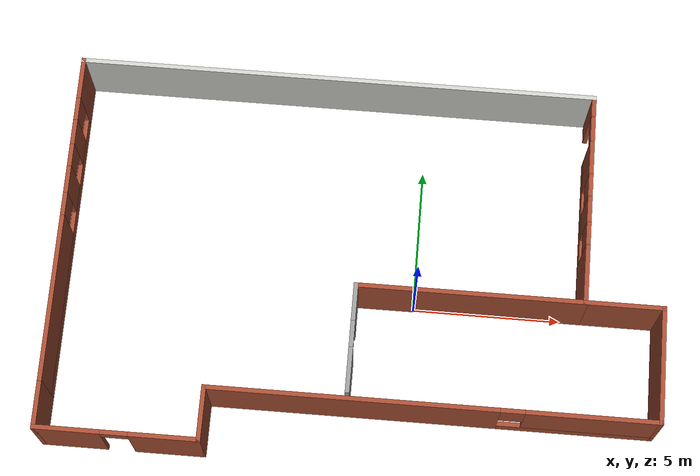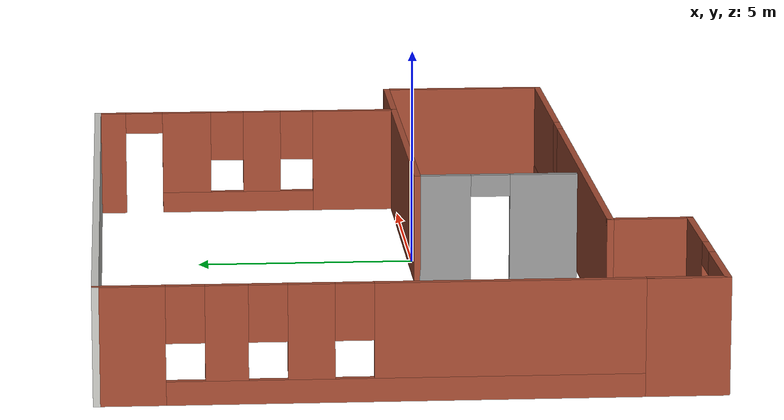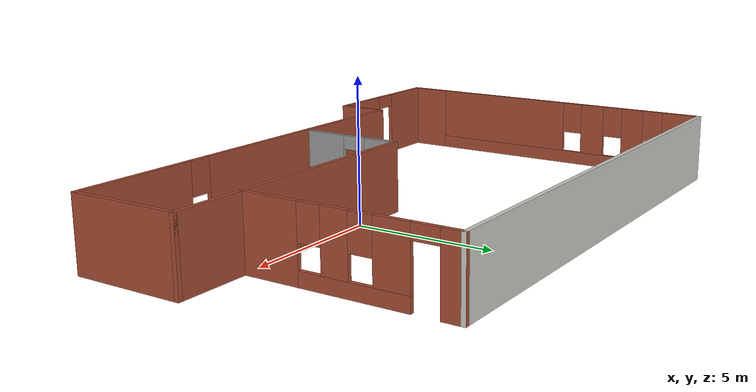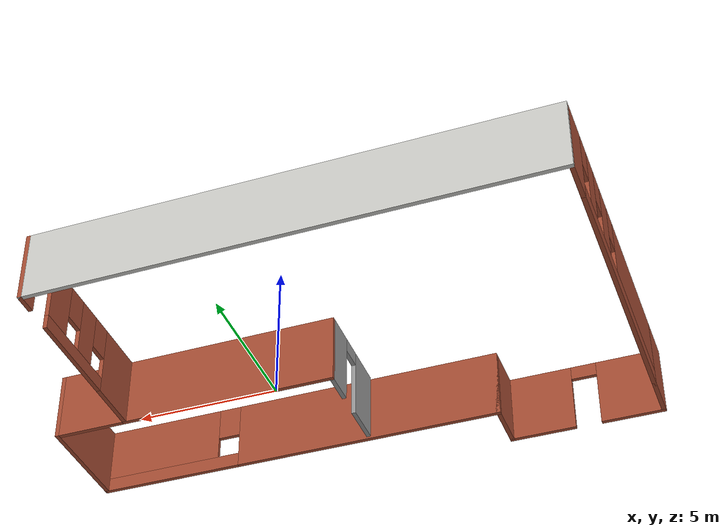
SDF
<?xml version='1.0'?>
<sdf version='1.6'>
  <model name='model'>
    <pose frame=''>-1.87936 0.889255 0 0 -0 0</pose>
    <link name='Wall_10'>
      <pose frame=''>7.50018 2.8 0 0 -0 1.57075</pose>
      <visual name='Wall_10_Visual_0'>
        <pose frame=''>-2.68442 0 1.25 0 -0 0</pose>
        <geometry>
          <box>
            <size>2.09065 0.15 2.5</size>
          </box>
        </geometry>
        <material>
          <script>
            <uri>file://media/materials/scripts/gazebo.material</uri>
            <name>Gazebo/Bricks</name>
          </script>
          <ambient>0.435294 0.796078 0.67451 1</ambient>
        </material>
        <meta>
          <layer>0</layer>
        </meta>
      </visual>
      <collision name='Wall_10_Collision_0'>
        <geometry>
          <box>
            <size>2.09065 0.15 2.5</size>
          </box>
        </geometry>
        <pose frame=''>-2.68442 0 1.25 0 -0 0</pose>
      </collision>
      <visual name='Wall_10_Visual_1'>
        <pose frame=''>3.35058 0 1.25 0 -0 0</pose>
        <geometry>
          <box>
            <size>0.758336 0.15 2.5</size>
          </box>
        </geometry>
        <material>
          <script>
            <uri>file://media/materials/scripts/gazebo.material</uri>
            <name>Gazebo/Bricks</name>
          </script>
          <ambient>0.435294 0.796078 0.67451 1</ambient>
        </material>
        <meta>
          <layer>0</layer>
        </meta>
      </visual>
      <collision name='Wall_10_Collision_1'>
        <geometry>
          <box>
            <size>0.758336 0.15 2.5</size>
          </box>
        </geometry>
        <pose frame=''>3.35058 0 1.25 0 -0 0</pose>
      </collision>
      <visual name='Wall_10_Visual_2'>
        <pose frame=''>0.216155 0 0.25 0 -0 0</pose>
        <geometry>
          <box>
            <size>3.71051 0.15 0.5</size>
          </box>
        </geometry>
        <material>
          <script>
            <uri>file://media/materials/scripts/gazebo.material</uri>
            <name>Gazebo/Bricks</name>
          </script>
          <ambient>0.435294 0.796078 0.67451 1</ambient>
        </material>
        <meta>
          <layer>0</layer>
        </meta>
      </visual>
      <collision name='Wall_10_Collision_2'>
        <geometry>
          <box>
            <size>3.71051 0.15 0.5</size>
          </box>
        </geometry>
        <pose frame=''>0.216155 0 0.25 0 -0 0</pose>
      </collision>
      <visual name='Wall_10_Visual_3'>
        <pose frame=''>-0.378984 0 1.5 0 -0 0</pose>
        <geometry>
          <box>
            <size>0.920234 0.15 2</size>
          </box>
        </geometry>
        <material>
          <script>
            <uri>file://media/materials/scripts/gazebo.material</uri>
            <name>Gazebo/Bricks</name>
          </script>
          <ambient>0.435294 0.796078 0.67451 1</ambient>
        </material>
        <meta>
          <layer>0</layer>
        </meta>
      </visual>
      <collision name='Wall_10_Collision_3'>
        <geometry>
          <box>
            <size>0.920234 0.15 2</size>
          </box>
        </geometry>
        <pose frame=''>-0.378984 0 1.5 0 -0 0</pose>
      </collision>
      <visual name='Wall_10_Visual_4'>
        <pose frame=''>1.47627 0 1.5 0 -0 0</pose>
        <geometry>
          <box>
            <size>1.19028 0.15 2</size>
          </box>
        </geometry>
        <material>
          <script>
            <uri>file://media/materials/scripts/gazebo.material</uri>
            <name>Gazebo/Bricks</name>
          </script>
          <ambient>0.435294 0.796078 0.67451 1</ambient>
        </material>
        <meta>
          <layer>0</layer>
        </meta>
      </visual>
      <collision name='Wall_10_Collision_4'>
        <geometry>
          <box>
            <size>1.19028 0.15 2</size>
          </box>
        </geometry>
        <pose frame=''>1.47627 0 1.5 0 -0 0</pose>
      </collision>
      <visual name='Wall_10_Visual_5'>
        <pose frame=''>-1.2391 0 1.9 0 -0 0</pose>
        <geometry>
          <box>
            <size>0.8 0.15 1.2</size>
          </box>
        </geometry>
        <material>
          <script>
            <uri>file://media/materials/scripts/gazebo.material</uri>
            <name>Gazebo/Bricks</name>
          </script>
          <ambient>0.435294 0.796078 0.67451 1</ambient>
        </material>
        <meta>
          <layer>0</layer>
        </meta>
      </visual>
      <collision name='Wall_10_Collision_5'>
        <geometry>
          <box>
            <size>0.8 0.15 1.2</size>
          </box>
        </geometry>
        <pose frame=''>-1.2391 0 1.9 0 -0 0</pose>
      </collision>
      <visual name='Wall_10_Visual_6'>
        <pose frame=''>0.481133 0 1.9 0 -0 0</pose>
        <geometry>
          <box>
            <size>0.8 0.15 1.2</size>
          </box>
        </geometry>
        <material>
          <script>
            <uri>file://media/materials/scripts/gazebo.material</uri>
            <name>Gazebo/Bricks</name>
          </script>
          <ambient>0.435294 0.796078 0.67451 1</ambient>
        </material>
        <meta>
          <layer>0</layer>
        </meta>
      </visual>
      <collision name='Wall_10_Collision_6'>
        <geometry>
          <box>
            <size>0.8 0.15 1.2</size>
          </box>
        </geometry>
        <pose frame=''>0.481133 0 1.9 0 -0 0</pose>
      </collision>
      <visual name='Wall_10_Visual_7'>
        <pose frame=''>2.52141 0 2.25 0 -0 0</pose>
        <geometry>
          <box>
            <size>0.9 0.15 0.5</size>
          </box>
        </geometry>
        <material>
          <script>
            <uri>file://media/materials/scripts/gazebo.material</uri>
            <name>Gazebo/Bricks</name>
          </script>
          <ambient>0.435294 0.796078 0.67451 1</ambient>
        </material>
        <meta>
          <layer>0</layer>
        </meta>
      </visual>
      <collision name='Wall_10_Collision_7'>
        <geometry>
          <box>
            <size>0.9 0.15 0.5</size>
          </box>
        </geometry>
        <pose frame=''>2.52141 0 2.25 0 -0 0</pose>
      </collision>
    </link>
    <link name='Wall_11'>
      <collision name='Wall_11_Collision'>
        <geometry>
          <box>
            <size>17.75 0.15 2.5</size>
          </box>
        </geometry>
        <pose frame=''>0 0 1.25 0 -0 0</pose>
      </collision>
      <visual name='Wall_11_Visual'>
        <pose frame=''>0 0 1.25 0 -0 0</pose>
        <geometry>
          <box>
            <size>17.75 0.15 2.5</size>
          </box>
        </geometry>
        <material>
          <script>
            <uri>file://media/materials/scripts/gazebo.material</uri>
            <name>Gazebo/CeilingTiled</name>
          </script>
          <ambient>0.435294 0.796078 0.67451 1</ambient>
        </material>
        <meta>
          <layer>0</layer>
        </meta>
      </visual>
      <pose frame=''>-1.29964 6.45474 0 0 -0 3.14159</pose>
    </link>
    <link name='Wall_12'>
      <pose frame=''>-10.0998 0.799998 0 0 0 -1.57083</pose>
      <visual name='Wall_12_Visual_0'>
        <pose frame=''>-4.98376 0 1.25 0 -0 0</pose>
        <geometry>
          <box>
            <size>1.49197 0.15 2.5</size>
          </box>
        </geometry>
        <material>
          <script>
            <uri>file://media/materials/scripts/gazebo.material</uri>
            <name>Gazebo/Bricks</name>
          </script>
          <ambient>1 1 1 1</ambient>
        </material>
        <meta>
          <layer>0</layer>
        </meta>
      </visual>
      <collision name='Wall_12_Collision_0'>
        <geometry>
          <box>
            <size>1.49197 0.15 2.5</size>
          </box>
        </geometry>
        <pose frame=''>-4.98376 0 1.25 0 -0 0</pose>
      </collision>
      <visual name='Wall_12_Visual_1'>
        <pose frame=''>0.745985 0 0.25 0 -0 0</pose>
        <geometry>
          <box>
            <size>9.96752 0.15 0.5</size>
          </box>
        </geometry>
        <material>
          <script>
            <uri>file://media/materials/scripts/gazebo.material</uri>
            <name>Gazebo/Bricks</name>
          </script>
          <ambient>1 1 1 1</ambient>
        </material>
        <meta>
          <layer>0</layer>
        </meta>
      </visual>
      <collision name='Wall_12_Collision_1'>
        <geometry>
          <box>
            <size>9.96752 0.15 0.5</size>
          </box>
        </geometry>
        <pose frame=''>0.745985 0 0.25 0 -0 0</pose>
      </collision>
      <visual name='Wall_12_Visual_2'>
        <pose frame=''>-2.99602 0 1.5 0 -0 0</pose>
        <geometry>
          <box>
            <size>0.88351 0.15 2</size>
          </box>
        </geometry>
        <material>
          <script>
            <uri>file://media/materials/scripts/gazebo.material</uri>
            <name>Gazebo/Bricks</name>
          </script>
          <ambient>1 1 1 1</ambient>
        </material>
        <meta>
          <layer>0</layer>
        </meta>
      </visual>
      <collision name='Wall_12_Collision_2'>
        <geometry>
          <box>
            <size>0.88351 0.15 2</size>
          </box>
        </geometry>
        <pose frame=''>-2.99602 0 1.5 0 -0 0</pose>
      </collision>
      <visual name='Wall_12_Visual_3'>
        <pose frame=''>-1.27243 0 1.5 0 -0 0</pose>
        <geometry>
          <box>
            <size>0.963678 0.15 2</size>
          </box>
        </geometry>
        <material>
          <script>
            <uri>file://media/materials/scripts/gazebo.material</uri>
            <name>Gazebo/Bricks</name>
          </script>
          <ambient>1 1 1 1</ambient>
        </material>
        <meta>
          <layer>0</layer>
        </meta>
      </visual>
      <collision name='Wall_12_Collision_3'>
        <geometry>
          <box>
            <size>0.963678 0.15 2</size>
          </box>
        </geometry>
        <pose frame=''>-1.27243 0 1.5 0 -0 0</pose>
      </collision>
      <visual name='Wall_12_Visual_4'>
        <pose frame=''>2.86958 0 1.5 0 -0 0</pose>
        <geometry>
          <box>
            <size>5.72034 0.15 2</size>
          </box>
        </geometry>
        <material>
          <script>
            <uri>file://media/materials/scripts/gazebo.material</uri>
            <name>Gazebo/Bricks</name>
          </script>
          <ambient>1 1 1 1</ambient>
        </material>
        <meta>
          <layer>0</layer>
        </meta>
      </visual>
      <collision name='Wall_12_Collision_4'>
        <geometry>
          <box>
            <size>5.72034 0.15 2</size>
          </box>
        </geometry>
        <pose frame=''>2.86958 0 1.5 0 -0 0</pose>
      </collision>
      <visual name='Wall_12_Visual_5'>
        <pose frame=''>-3.83778 0 1.9 0 -0 0</pose>
        <geometry>
          <box>
            <size>0.8 0.15 1.2</size>
          </box>
        </geometry>
        <material>
          <script>
            <uri>file://media/materials/scripts/gazebo.material</uri>
            <name>Gazebo/Bricks</name>
          </script>
          <ambient>1 1 1 1</ambient>
        </material>
        <meta>
          <layer>0</layer>
        </meta>
      </visual>
      <collision name='Wall_12_Collision_5'>
        <geometry>
          <box>
            <size>0.8 0.15 1.2</size>
          </box>
        </geometry>
        <pose frame=''>-3.83778 0 1.9 0 -0 0</pose>
      </collision>
      <visual name='Wall_12_Visual_6'>
        <pose frame=''>-2.15427 0 1.9 0 -0 0</pose>
        <geometry>
          <box>
            <size>0.8 0.15 1.2</size>
          </box>
        </geometry>
        <material>
          <script>
            <uri>file://media/materials/scripts/gazebo.material</uri>
            <name>Gazebo/Bricks</name>
          </script>
          <ambient>1 1 1 1</ambient>
        </material>
        <meta>
          <layer>0</layer>
        </meta>
      </visual>
      <collision name='Wall_12_Collision_6'>
        <geometry>
          <box>
            <size>0.8 0.15 1.2</size>
          </box>
        </geometry>
        <pose frame=''>-2.15427 0 1.9 0 -0 0</pose>
      </collision>
      <visual name='Wall_12_Visual_7'>
        <pose frame=''>-0.390589 0 1.9 0 -0 0</pose>
        <geometry>
          <box>
            <size>0.8 0.15 1.2</size>
          </box>
        </geometry>
        <material>
          <script>
            <uri>file://media/materials/scripts/gazebo.material</uri>
            <name>Gazebo/Bricks</name>
          </script>
          <ambient>1 1 1 1</ambient>
        </material>
        <meta>
          <layer>0</layer>
        </meta>
      </visual>
      <collision name='Wall_12_Collision_7'>
        <geometry>
          <box>
            <size>0.8 0.15 1.2</size>
          </box>
        </geometry>
        <pose frame=''>-0.390589 0 1.9 0 -0 0</pose>
      </collision>
    </link>
    <link name='Wall_13'>
      <collision name='Wall_13_Collision'>
        <geometry>
          <box>
            <size>1.75 0.15 2.5</size>
          </box>
        </geometry>
        <pose frame=''>0 0 1.25 0 -0 0</pose>
      </collision>
      <visual name='Wall_13_Visual'>
        <pose frame=''>0 0 1.25 0 -0 0</pose>
        <geometry>
          <box>
            <size>1.75 0.15 2.5</size>
          </box>
        </geometry>
        <material>
          <script>
            <uri>file://media/materials/scripts/gazebo.material</uri>
            <name>Gazebo/Bricks</name>
          </script>
          <ambient>1 1 1 1</ambient>
        </material>
        <meta>
          <layer>0</layer>
        </meta>
      </visual>
      <pose frame=''>-10.1 -5.65475 0 0 0 -1.5708</pose>
    </link>
    <link name='Wall_14'>
      <pose frame=''>-7.425 -6.45475 0 0 -0 0</pose>
      <visual name='Wall_14_Visual_0'>
        <pose frame=''>-1.63288 0 1.25 0 -0 0</pose>
        <geometry>
          <box>
            <size>2.23424 0.15 2.5</size>
          </box>
        </geometry>
        <material>
          <script>
            <uri>file://media/materials/scripts/gazebo.material</uri>
            <name>Gazebo/Bricks</name>
          </script>
          <ambient>1 1 1 1</ambient>
        </material>
        <meta>
          <layer>0</layer>
        </meta>
      </visual>
      <collision name='Wall_14_Collision_0'>
        <geometry>
          <box>
            <size>2.23424 0.15 2.5</size>
          </box>
        </geometry>
        <pose frame=''>-1.63288 0 1.25 0 -0 0</pose>
      </collision>
      <visual name='Wall_14_Visual_1'>
        <pose frame=''>1.56712 0 1.25 0 -0 0</pose>
        <geometry>
          <box>
            <size>2.36576 0.15 2.5</size>
          </box>
        </geometry>
        <material>
          <script>
            <uri>file://media/materials/scripts/gazebo.material</uri>
            <name>Gazebo/Bricks</name>
          </script>
          <ambient>1 1 1 1</ambient>
        </material>
        <meta>
          <layer>0</layer>
        </meta>
      </visual>
      <collision name='Wall_14_Collision_1'>
        <geometry>
          <box>
            <size>2.36576 0.15 2.5</size>
          </box>
        </geometry>
        <pose frame=''>1.56712 0 1.25 0 -0 0</pose>
      </collision>
      <visual name='Wall_14_Visual_2'>
        <pose frame=''>-0.065763 0 2.25 0 -0 0</pose>
        <geometry>
          <box>
            <size>0.9 0.15 0.5</size>
          </box>
        </geometry>
        <material>
          <script>
            <uri>file://media/materials/scripts/gazebo.material</uri>
            <name>Gazebo/Bricks</name>
          </script>
          <ambient>1 1 1 1</ambient>
        </material>
        <meta>
          <layer>0</layer>
        </meta>
      </visual>
      <collision name='Wall_14_Collision_2'>
        <geometry>
          <box>
            <size>0.9 0.15 0.5</size>
          </box>
        </geometry>
        <pose frame=''>-0.065763 0 2.25 0 -0 0</pose>
      </collision>
    </link>
    <link name='Wall_15'>
      <collision name='Wall_15_Collision'>
        <geometry>
          <box>
            <size>1.9 0.15 2.5</size>
          </box>
        </geometry>
        <pose frame=''>0 0 1.25 0 -0 0</pose>
      </collision>
      <visual name='Wall_15_Visual'>
        <pose frame=''>0 0 1.25 0 -0 0</pose>
        <geometry>
          <box>
            <size>1.9 0.15 2.5</size>
          </box>
        </geometry>
        <material>
          <script>
            <uri>file://media/materials/scripts/gazebo.material</uri>
            <name>Gazebo/Bricks</name>
          </script>
          <ambient>1 1 1 1</ambient>
        </material>
        <meta>
          <layer>0</layer>
        </meta>
      </visual>
      <pose frame=''>-4.75 -5.57975 0 0 -0 1.5708</pose>
    </link>
    <link name='Wall_19'>
      <collision name='Wall_19_Collision'>
        <geometry>
          <box>
            <size>7.75 0.15 2.5</size>
          </box>
        </geometry>
        <pose frame=''>0 0 1.25 0 -0 0</pose>
      </collision>
      <visual name='Wall_19_Visual'>
        <pose frame=''>0 0 1.25 0 -0 0</pose>
        <geometry>
          <box>
            <size>7.75 0.15 2.5</size>
          </box>
        </geometry>
        <material>
          <script>
            <uri>file://media/materials/scripts/gazebo.material</uri>
            <name>Gazebo/Bricks</name>
          </script>
          <ambient>0.435294 0.796078 0.67451 1</ambient>
        </material>
        <meta>
          <layer>0</layer>
        </meta>
      </visual>
      <pose frame=''>3.7 -0.854748 0 0 -0 3.14159</pose>
    </link>
    <link name='Wall_20'>
      <pose frame=''>-0.099999 -2.65475 0 0 0 -1.5708</pose>
      <visual name='Wall_20_Visual_0'>
        <pose frame=''>-1.22543 0 1.25 0 -0 0</pose>
        <geometry>
          <box>
            <size>1.29914 0.15 2.5</size>
          </box>
        </geometry>
        <material>
          <script>
            <uri>file://media/materials/scripts/gazebo.material</uri>
            <name>Gazebo/Grey</name>
          </script>
          <ambient>1 1 1 1</ambient>
        </material>
        <meta>
          <layer>0</layer>
        </meta>
      </visual>
      <collision name='Wall_20_Collision_0'>
        <geometry>
          <box>
            <size>1.29914 0.15 2.5</size>
          </box>
        </geometry>
        <pose frame=''>-1.22543 0 1.25 0 -0 0</pose>
      </collision>
      <visual name='Wall_20_Visual_1'>
        <pose frame=''>1.09957 0 1.25 0 -0 0</pose>
        <geometry>
          <box>
            <size>1.55086 0.15 2.5</size>
          </box>
        </geometry>
        <material>
          <script>
            <uri>file://media/materials/scripts/gazebo.material</uri>
            <name>Gazebo/Grey</name>
          </script>
          <ambient>1 1 1 1</ambient>
        </material>
        <meta>
          <layer>0</layer>
        </meta>
      </visual>
      <collision name='Wall_20_Collision_1'>
        <geometry>
          <box>
            <size>1.55086 0.15 2.5</size>
          </box>
        </geometry>
        <pose frame=''>1.09957 0 1.25 0 -0 0</pose>
      </collision>
      <visual name='Wall_20_Visual_2'>
        <pose frame=''>-0.125864 0 2.25 0 -0 0</pose>
        <geometry>
          <box>
            <size>0.9 0.15 0.5</size>
          </box>
        </geometry>
        <material>
          <script>
            <uri>file://media/materials/scripts/gazebo.material</uri>
            <name>Gazebo/Grey</name>
          </script>
          <ambient>1 1 1 1</ambient>
        </material>
        <meta>
          <layer>0</layer>
        </meta>
      </visual>
      <collision name='Wall_20_Collision_2'>
        <geometry>
          <box>
            <size>0.9 0.15 0.5</size>
          </box>
        </geometry>
        <pose frame=''>-0.125864 0 2.25 0 -0 0</pose>
      </collision>
    </link>
    <link name='Wall_7'>
      <pose frame=''>2.675 -4.70475 0 0 -0 0</pose>
      <visual name='Wall_7_Visual_0'>
        <pose frame=''>-2.63677 0 1.25 0 -0 0</pose>
        <geometry>
          <box>
            <size>9.72647 0.15 2.5</size>
          </box>
        </geometry>
        <material>
          <script>
            <uri>file://media/materials/scripts/gazebo.material</uri>
            <name>Gazebo/Bricks</name>
          </script>
          <ambient>0.435294 0.796078 0.67451 1</ambient>
        </material>
        <meta>
          <layer>0</layer>
        </meta>
      </visual>
      <collision name='Wall_7_Collision_0'>
        <geometry>
          <box>
            <size>9.72647 0.15 2.5</size>
          </box>
        </geometry>
        <pose frame=''>-2.63677 0 1.25 0 -0 0</pose>
      </collision>
      <visual name='Wall_7_Visual_1'>
        <pose frame=''>4.86323 0 0.25 0 -0 0</pose>
        <geometry>
          <box>
            <size>5.27353 0.15 0.5</size>
          </box>
        </geometry>
        <material>
          <script>
            <uri>file://media/materials/scripts/gazebo.material</uri>
            <name>Gazebo/Bricks</name>
          </script>
          <ambient>0.435294 0.796078 0.67451 1</ambient>
        </material>
        <meta>
          <layer>0</layer>
        </meta>
      </visual>
      <collision name='Wall_7_Collision_1'>
        <geometry>
          <box>
            <size>5.27353 0.15 0.5</size>
          </box>
        </geometry>
        <pose frame=''>4.86323 0 0.25 0 -0 0</pose>
      </collision>
      <visual name='Wall_7_Visual_2'>
        <pose frame=''>5.26323 0 1.5 0 -0 0</pose>
        <geometry>
          <box>
            <size>4.47353 0.15 2</size>
          </box>
        </geometry>
        <material>
          <script>
            <uri>file://media/materials/scripts/gazebo.material</uri>
            <name>Gazebo/Bricks</name>
          </script>
          <ambient>0.435294 0.796078 0.67451 1</ambient>
        </material>
        <meta>
          <layer>0</layer>
        </meta>
      </visual>
      <collision name='Wall_7_Collision_2'>
        <geometry>
          <box>
            <size>4.47353 0.15 2</size>
          </box>
        </geometry>
        <pose frame=''>5.26323 0 1.5 0 -0 0</pose>
      </collision>
      <visual name='Wall_7_Visual_3'>
        <pose frame=''>2.62647 0 1.9 0 -0 0</pose>
        <geometry>
          <box>
            <size>0.8 0.15 1.2</size>
          </box>
        </geometry>
        <material>
          <script>
            <uri>file://media/materials/scripts/gazebo.material</uri>
            <name>Gazebo/Bricks</name>
          </script>
          <ambient>0.435294 0.796078 0.67451 1</ambient>
        </material>
        <meta>
          <layer>0</layer>
        </meta>
      </visual>
      <collision name='Wall_7_Collision_3'>
        <geometry>
          <box>
            <size>0.8 0.15 1.2</size>
          </box>
        </geometry>
        <pose frame=''>2.62647 0 1.9 0 -0 0</pose>
      </collision>
    </link>
    <link name='Wall_8'>
      <collision name='Wall_8_Collision'>
        <geometry>
          <box>
            <size>4 0.15 2.5</size>
          </box>
        </geometry>
        <pose frame=''>0 0 1.25 0 -0 0</pose>
      </collision>
      <visual name='Wall_8_Visual'>
        <pose frame=''>0 0 1.25 0 -0 0</pose>
        <geometry>
          <box>
            <size>4 0.15 2.5</size>
          </box>
        </geometry>
        <material>
          <script>
            <uri>file://media/materials/scripts/gazebo.material</uri>
            <name>Gazebo/Bricks</name>
          </script>
          <ambient>1 1 1 1</ambient>
        </material>
        <meta>
          <layer>0</layer>
        </meta>
      </visual>
      <pose frame=''>10.1 -2.77975 0 0 -0 1.5708</pose>
    </link>
    <link name='Wall_9'>
      <collision name='Wall_9_Collision'>
        <geometry>
          <box>
            <size>2.75 0.15 2.5</size>
          </box>
        </geometry>
        <pose frame=''>0 0 1.25 0 -0 0</pose>
      </collision>
      <visual name='Wall_9_Visual'>
        <pose frame=''>0 0 1.25 0 -0 0</pose>
        <geometry>
          <box>
            <size>2.75 0.15 2.5</size>
          </box>
        </geometry>
        <material>
          <script>
            <uri>file://media/materials/scripts/gazebo.material</uri>
            <name>Gazebo/Bricks</name>
          </script>
          <ambient>1 1 1 1</ambient>
        </material>
        <meta>
          <layer>0</layer>
        </meta>
      </visual>
      <pose frame=''>8.8 -0.854748 0 0 -0 3.14159</pose>
    </link>
    <static>1</static>
  </model>
</sdf>
